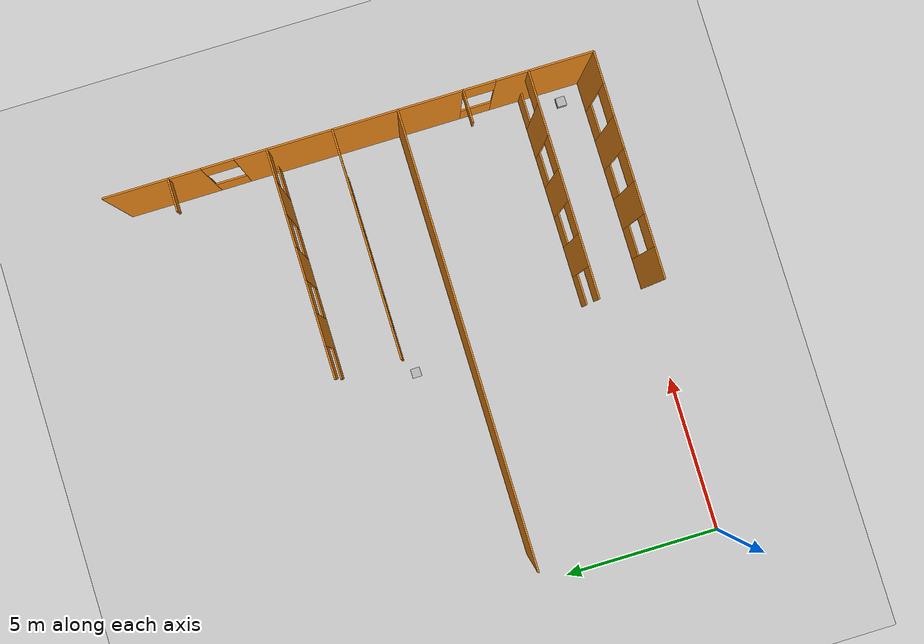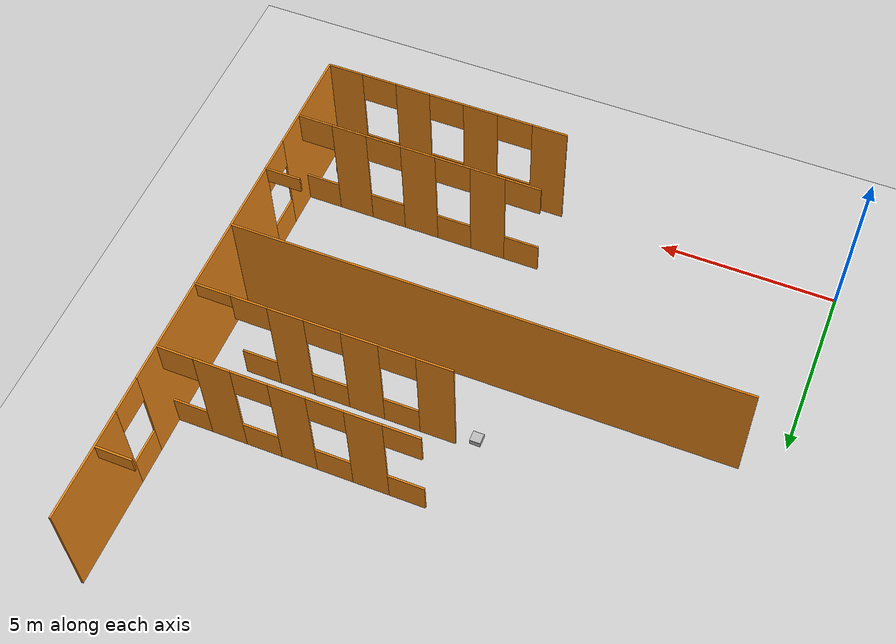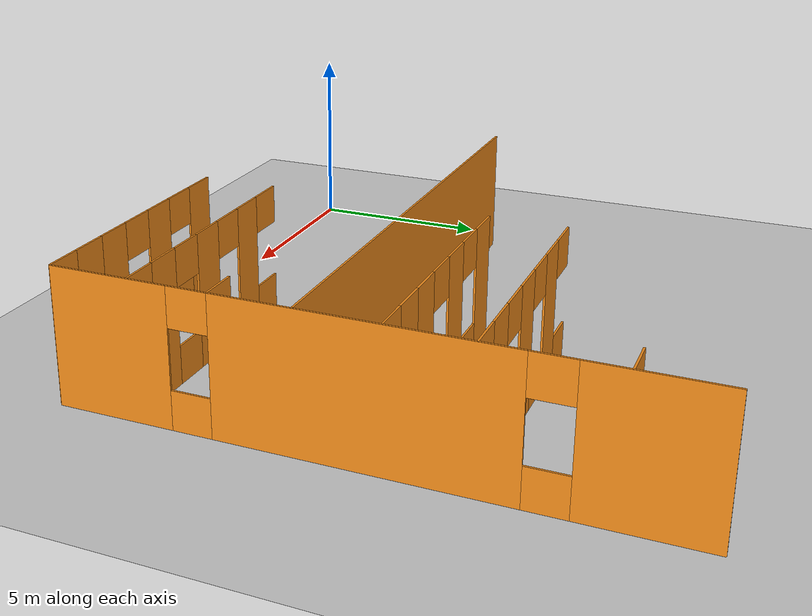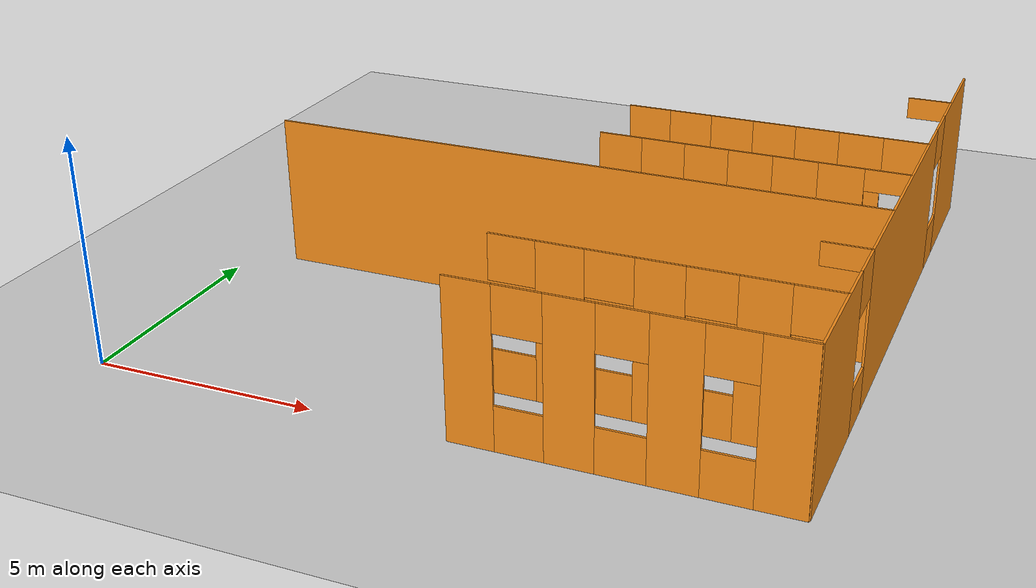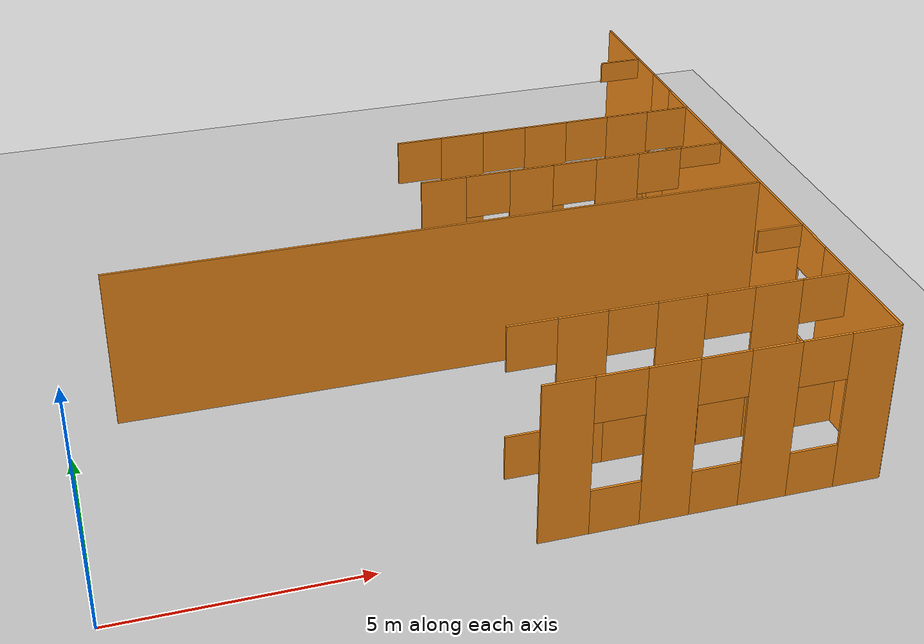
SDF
<sdf version="1.6">
 <world name="default">
  <include><uri>model://rirpc_box</uri><name>cube_2</name><pose>7.53125 7.71875 0 0 0 0</pose></include>
  <include><uri>model://rirpc_box</uri><name>cube_1</name><pose>14.53125 0.71875 0 0 0 0</pose></include>
  <model name="window_27">
   <pose>8.5 10.0 1.75 0 0 -0.0</pose>
   <link name="top">
    <pose>0 0 1.25 0 0 0</pose>
    <inertial>
     <mass>1</mass>
     <inertia><ixx>0</ixx><ixy>0</ixy><ixz>0</ixz><iyy>0</iyy><iyz>0</iyz><izz>0</izz></inertia>
    </inertial>
    <collision name="collision"><geometry><box><size>1.0 0.05 1.0</size></box></geometry></collision>
    <visual name="visual">
     <geometry><box><size>1.0 0.05 1.0</size></box></geometry>
     <material>
      <script><name>Gazebo/Orange</name><uri>file://media/materials/scripts/gazebo.material</uri></script>
     </material>
    </visual>
   </link>
   <link name="bot">
    <pose>0 0 -1.25 0 0 0</pose>
    <inertial>
     <mass>1</mass>
     <inertia><ixx>0</ixx><ixy>0</ixy><ixz>0</ixz><iyy>0</iyy><iyz>0</iyz><izz>0</izz></inertia>
    </inertial>
    <collision name="collision"><geometry><box><size>1.0 0.05 1.0</size></box></geometry></collision>
    <visual name="visual">
     <geometry><box><size>1.0 0.05 1.0</size></box></geometry>
     <material>
      <script><name>Gazebo/Orange</name><uri>file://media/materials/scripts/gazebo.material</uri></script>
     </material>
    </visual>
   </link>
   <static>1</static>
  </model>
  <model name="window_26">
   <pose>10.5 10.0 1.75 0 0 -0.0</pose>
   <link name="top">
    <pose>0 0 1.25 0 0 0</pose>
    <inertial>
     <mass>1</mass>
     <inertia><ixx>0</ixx><ixy>0</ixy><ixz>0</ixz><iyy>0</iyy><iyz>0</iyz><izz>0</izz></inertia>
    </inertial>
    <collision name="collision"><geometry><box><size>1.0 0.05 1.0</size></box></geometry></collision>
    <visual name="visual">
     <geometry><box><size>1.0 0.05 1.0</size></box></geometry>
     <material>
      <script><name>Gazebo/Orange</name><uri>file://media/materials/scripts/gazebo.material</uri></script>
     </material>
    </visual>
   </link>
   <link name="bot">
    <pose>0 0 -1.25 0 0 0</pose>
    <inertial>
     <mass>1</mass>
     <inertia><ixx>0</ixx><ixy>0</ixy><ixz>0</ixz><iyy>0</iyy><iyz>0</iyz><izz>0</izz></inertia>
    </inertial>
    <collision name="collision"><geometry><box><size>1.0 0.05 1.0</size></box></geometry></collision>
    <visual name="visual">
     <geometry><box><size>1.0 0.05 1.0</size></box></geometry>
     <material>
      <script><name>Gazebo/Orange</name><uri>file://media/materials/scripts/gazebo.material</uri></script>
     </material>
    </visual>
   </link>
   <static>1</static>
  </model>
  <model name="window_25">
   <pose>12.5 10.0 1.75 0 0 -0.0</pose>
   <link name="top">
    <pose>0 0 1.25 0 0 0</pose>
    <inertial>
     <mass>1</mass>
     <inertia><ixx>0</ixx><ixy>0</ixy><ixz>0</ixz><iyy>0</iyy><iyz>0</iyz><izz>0</izz></inertia>
    </inertial>
    <collision name="collision"><geometry><box><size>1.0 0.05 1.0</size></box></geometry></collision>
    <visual name="visual">
     <geometry><box><size>1.0 0.05 1.0</size></box></geometry>
     <material>
      <script><name>Gazebo/Orange</name><uri>file://media/materials/scripts/gazebo.material</uri></script>
     </material>
    </visual>
   </link>
   <link name="bot">
    <pose>0 0 -1.25 0 0 0</pose>
    <inertial>
     <mass>1</mass>
     <inertia><ixx>0</ixx><ixy>0</ixy><ixz>0</ixz><iyy>0</iyy><iyz>0</iyz><izz>0</izz></inertia>
    </inertial>
    <collision name="collision"><geometry><box><size>1.0 0.05 1.0</size></box></geometry></collision>
    <visual name="visual">
     <geometry><box><size>1.0 0.05 1.0</size></box></geometry>
     <material>
      <script><name>Gazebo/Orange</name><uri>file://media/materials/scripts/gazebo.material</uri></script>
     </material>
    </visual>
   </link>
   <static>1</static>
  </model>
  <model name="window_24">
   <pose>14.5 10.0 1.75 0 0 -0.0</pose>
   <link name="top">
    <pose>0 0 1.25 0 0 0</pose>
    <inertial>
     <mass>1</mass>
     <inertia><ixx>0</ixx><ixy>0</ixy><ixz>0</ixz><iyy>0</iyy><iyz>0</iyz><izz>0</izz></inertia>
    </inertial>
    <collision name="collision"><geometry><box><size>1.0 0.05 1.0</size></box></geometry></collision>
    <visual name="visual">
     <geometry><box><size>1.0 0.05 1.0</size></box></geometry>
     <material>
      <script><name>Gazebo/Orange</name><uri>file://media/materials/scripts/gazebo.material</uri></script>
     </material>
    </visual>
   </link>
   <link name="bot">
    <pose>0 0 -1.25 0 0 0</pose>
    <inertial>
     <mass>1</mass>
     <inertia><ixx>0</ixx><ixy>0</ixy><ixz>0</ixz><iyy>0</iyy><iyz>0</iyz><izz>0</izz></inertia>
    </inertial>
    <collision name="collision"><geometry><box><size>1.0 0.05 1.0</size></box></geometry></collision>
    <visual name="visual">
     <geometry><box><size>1.0 0.05 1.0</size></box></geometry>
     <material>
      <script><name>Gazebo/Orange</name><uri>file://media/materials/scripts/gazebo.material</uri></script>
     </material>
    </visual>
   </link>
   <static>1</static>
  </model>
  <model name="window_23">
   <pose>13.5 8.0 1.75 0 0 -3.141592653589793</pose>
   <link name="top">
    <pose>0 0 1.25 0 0 0</pose>
    <inertial>
     <mass>1</mass>
     <inertia><ixx>0</ixx><ixy>0</ixy><ixz>0</ixz><iyy>0</iyy><iyz>0</iyz><izz>0</izz></inertia>
    </inertial>
    <collision name="collision"><geometry><box><size>1.0 0.05 1.0</size></box></geometry></collision>
    <visual name="visual">
     <geometry><box><size>1.0 0.05 1.0</size></box></geometry>
     <material>
      <script><name>Gazebo/Orange</name><uri>file://media/materials/scripts/gazebo.material</uri></script>
     </material>
    </visual>
   </link>
   <link name="bot">
    <pose>0 0 -1.25 0 0 0</pose>
    <inertial>
     <mass>1</mass>
     <inertia><ixx>0</ixx><ixy>0</ixy><ixz>0</ixz><iyy>0</iyy><iyz>0</iyz><izz>0</izz></inertia>
    </inertial>
    <collision name="collision"><geometry><box><size>1.0 0.05 1.0</size></box></geometry></collision>
    <visual name="visual">
     <geometry><box><size>1.0 0.05 1.0</size></box></geometry>
     <material>
      <script><name>Gazebo/Orange</name><uri>file://media/materials/scripts/gazebo.material</uri></script>
     </material>
    </visual>
   </link>
   <static>1</static>
  </model>
  <model name="window_22">
   <pose>11.5 8.0 1.75 0 0 -3.141592653589793</pose>
   <link name="top">
    <pose>0 0 1.25 0 0 0</pose>
    <inertial>
     <mass>1</mass>
     <inertia><ixx>0</ixx><ixy>0</ixy><ixz>0</ixz><iyy>0</iyy><iyz>0</iyz><izz>0</izz></inertia>
    </inertial>
    <collision name="collision"><geometry><box><size>1.0 0.05 1.0</size></box></geometry></collision>
    <visual name="visual">
     <geometry><box><size>1.0 0.05 1.0</size></box></geometry>
     <material>
      <script><name>Gazebo/Orange</name><uri>file://media/materials/scripts/gazebo.material</uri></script>
     </material>
    </visual>
   </link>
   <link name="bot">
    <pose>0 0 -1.25 0 0 0</pose>
    <inertial>
     <mass>1</mass>
     <inertia><ixx>0</ixx><ixy>0</ixy><ixz>0</ixz><iyy>0</iyy><iyz>0</iyz><izz>0</izz></inertia>
    </inertial>
    <collision name="collision"><geometry><box><size>1.0 0.05 1.0</size></box></geometry></collision>
    <visual name="visual">
     <geometry><box><size>1.0 0.05 1.0</size></box></geometry>
     <material>
      <script><name>Gazebo/Orange</name><uri>file://media/materials/scripts/gazebo.material</uri></script>
     </material>
    </visual>
   </link>
   <static>1</static>
  </model>
  <model name="window_21">
   <pose>9.5 8.0 1.75 0 0 -3.141592653589793</pose>
   <link name="top">
    <pose>0 0 1.25 0 0 0</pose>
    <inertial>
     <mass>1</mass>
     <inertia><ixx>0</ixx><ixy>0</ixy><ixz>0</ixz><iyy>0</iyy><iyz>0</iyz><izz>0</izz></inertia>
    </inertial>
    <collision name="collision"><geometry><box><size>1.0 0.05 1.0</size></box></geometry></collision>
    <visual name="visual">
     <geometry><box><size>1.0 0.05 1.0</size></box></geometry>
     <material>
      <script><name>Gazebo/Orange</name><uri>file://media/materials/scripts/gazebo.material</uri></script>
     </material>
    </visual>
   </link>
   <link name="bot">
    <pose>0 0 -1.25 0 0 0</pose>
    <inertial>
     <mass>1</mass>
     <inertia><ixx>0</ixx><ixy>0</ixy><ixz>0</ixz><iyy>0</iyy><iyz>0</iyz><izz>0</izz></inertia>
    </inertial>
    <collision name="collision"><geometry><box><size>1.0 0.05 1.0</size></box></geometry></collision>
    <visual name="visual">
     <geometry><box><size>1.0 0.05 1.0</size></box></geometry>
     <material>
      <script><name>Gazebo/Orange</name><uri>file://media/materials/scripts/gazebo.material</uri></script>
     </material>
    </visual>
   </link>
   <static>1</static>
  </model>
  <model name="window_16">
   <pose>14.5 2.0 1.75 0 0 -3.141592653589793</pose>
   <link name="top">
    <pose>0 0 1.25 0 0 0</pose>
    <inertial>
     <mass>1</mass>
     <inertia><ixx>0</ixx><ixy>0</ixy><ixz>0</ixz><iyy>0</iyy><iyz>0</iyz><izz>0</izz></inertia>
    </inertial>
    <collision name="collision"><geometry><box><size>1.0 0.05 1.0</size></box></geometry></collision>
    <visual name="visual">
     <geometry><box><size>1.0 0.05 1.0</size></box></geometry>
     <material>
      <script><name>Gazebo/Orange</name><uri>file://media/materials/scripts/gazebo.material</uri></script>
     </material>
    </visual>
   </link>
   <link name="bot">
    <pose>0 0 -1.25 0 0 0</pose>
    <inertial>
     <mass>1</mass>
     <inertia><ixx>0</ixx><ixy>0</ixy><ixz>0</ixz><iyy>0</iyy><iyz>0</iyz><izz>0</izz></inertia>
    </inertial>
    <collision name="collision"><geometry><box><size>1.0 0.05 1.0</size></box></geometry></collision>
    <visual name="visual">
     <geometry><box><size>1.0 0.05 1.0</size></box></geometry>
     <material>
      <script><name>Gazebo/Orange</name><uri>file://media/materials/scripts/gazebo.material</uri></script>
     </material>
    </visual>
   </link>
   <static>1</static>
  </model>
  <model name="window_15">
   <pose>12.5 2.0 1.75 0 0 -3.141592653589793</pose>
   <link name="top">
    <pose>0 0 1.25 0 0 0</pose>
    <inertial>
     <mass>1</mass>
     <inertia><ixx>0</ixx><ixy>0</ixy><ixz>0</ixz><iyy>0</iyy><iyz>0</iyz><izz>0</izz></inertia>
    </inertial>
    <collision name="collision"><geometry><box><size>1.0 0.05 1.0</size></box></geometry></collision>
    <visual name="visual">
     <geometry><box><size>1.0 0.05 1.0</size></box></geometry>
     <material>
      <script><name>Gazebo/Orange</name><uri>file://media/materials/scripts/gazebo.material</uri></script>
     </material>
    </visual>
   </link>
   <link name="bot">
    <pose>0 0 -1.25 0 0 0</pose>
    <inertial>
     <mass>1</mass>
     <inertia><ixx>0</ixx><ixy>0</ixy><ixz>0</ixz><iyy>0</iyy><iyz>0</iyz><izz>0</izz></inertia>
    </inertial>
    <collision name="collision"><geometry><box><size>1.0 0.05 1.0</size></box></geometry></collision>
    <visual name="visual">
     <geometry><box><size>1.0 0.05 1.0</size></box></geometry>
     <material>
      <script><name>Gazebo/Orange</name><uri>file://media/materials/scripts/gazebo.material</uri></script>
     </material>
    </visual>
   </link>
   <static>1</static>
  </model>
  <model name="window_14">
   <pose>8.5 2.0 1.75 0 0 -3.141592653589793</pose>
   <link name="top">
    <pose>0 0 1.25 0 0 0</pose>
    <inertial>
     <mass>1</mass>
     <inertia><ixx>0</ixx><ixy>0</ixy><ixz>0</ixz><iyy>0</iyy><iyz>0</iyz><izz>0</izz></inertia>
    </inertial>
    <collision name="collision"><geometry><box><size>1.0 0.05 1.0</size></box></geometry></collision>
    <visual name="visual">
     <geometry><box><size>1.0 0.05 1.0</size></box></geometry>
     <material>
      <script><name>Gazebo/Orange</name><uri>file://media/materials/scripts/gazebo.material</uri></script>
     </material>
    </visual>
   </link>
   <link name="bot">
    <pose>0 0 -1.25 0 0 0</pose>
    <inertial>
     <mass>1</mass>
     <inertia><ixx>0</ixx><ixy>0</ixy><ixz>0</ixz><iyy>0</iyy><iyz>0</iyz><izz>0</izz></inertia>
    </inertial>
    <collision name="collision"><geometry><box><size>1.0 0.05 1.0</size></box></geometry></collision>
    <visual name="visual">
     <geometry><box><size>1.0 0.05 1.0</size></box></geometry>
     <material>
      <script><name>Gazebo/Orange</name><uri>file://media/materials/scripts/gazebo.material</uri></script>
     </material>
    </visual>
   </link>
   <static>1</static>
  </model>
  <model name="window_13">
   <pose>10.5 2.0 1.75 0 0 -3.141592653589793</pose>
   <link name="top">
    <pose>0 0 1.25 0 0 0</pose>
    <inertial>
     <mass>1</mass>
     <inertia><ixx>0</ixx><ixy>0</ixy><ixz>0</ixz><iyy>0</iyy><iyz>0</iyz><izz>0</izz></inertia>
    </inertial>
    <collision name="collision"><geometry><box><size>1.0 0.05 1.0</size></box></geometry></collision>
    <visual name="visual">
     <geometry><box><size>1.0 0.05 1.0</size></box></geometry>
     <material>
      <script><name>Gazebo/Orange</name><uri>file://media/materials/scripts/gazebo.material</uri></script>
     </material>
    </visual>
   </link>
   <link name="bot">
    <pose>0 0 -1.25 0 0 0</pose>
    <inertial>
     <mass>1</mass>
     <inertia><ixx>0</ixx><ixy>0</ixy><ixz>0</ixz><iyy>0</iyy><iyz>0</iyz><izz>0</izz></inertia>
    </inertial>
    <collision name="collision"><geometry><box><size>1.0 0.05 1.0</size></box></geometry></collision>
    <visual name="visual">
     <geometry><box><size>1.0 0.05 1.0</size></box></geometry>
     <material>
      <script><name>Gazebo/Orange</name><uri>file://media/materials/scripts/gazebo.material</uri></script>
     </material>
    </visual>
   </link>
   <static>1</static>
  </model>
  <model name="window_9">
   <pose>15.0 11.5 1.75 0 0 1.5707963267948966</pose>
   <link name="top">
    <pose>0 0 1.25 0 0 0</pose>
    <inertial>
     <mass>1</mass>
     <inertia><ixx>0</ixx><ixy>0</ixy><ixz>0</ixz><iyy>0</iyy><iyz>0</iyz><izz>0</izz></inertia>
    </inertial>
    <collision name="collision"><geometry><box><size>1.0 0.05 1.0</size></box></geometry></collision>
    <visual name="visual">
     <geometry><box><size>1.0 0.05 1.0</size></box></geometry>
     <material>
      <script><name>Gazebo/Orange</name><uri>file://media/materials/scripts/gazebo.material</uri></script>
     </material>
    </visual>
   </link>
   <link name="bot">
    <pose>0 0 -1.25 0 0 0</pose>
    <inertial>
     <mass>1</mass>
     <inertia><ixx>0</ixx><ixy>0</ixy><ixz>0</ixz><iyy>0</iyy><iyz>0</iyz><izz>0</izz></inertia>
    </inertial>
    <collision name="collision"><geometry><box><size>1.0 0.05 1.0</size></box></geometry></collision>
    <visual name="visual">
     <geometry><box><size>1.0 0.05 1.0</size></box></geometry>
     <material>
      <script><name>Gazebo/Orange</name><uri>file://media/materials/scripts/gazebo.material</uri></script>
     </material>
    </visual>
   </link>
   <static>1</static>
  </model>
  <model name="window_8">
   <pose>15.0 3.5 1.75 0 0 1.5707963267948966</pose>
   <link name="top">
    <pose>0 0 1.25 0 0 0</pose>
    <inertial>
     <mass>1</mass>
     <inertia><ixx>0</ixx><ixy>0</ixy><ixz>0</ixz><iyy>0</iyy><iyz>0</iyz><izz>0</izz></inertia>
    </inertial>
    <collision name="collision"><geometry><box><size>1.0 0.05 1.0</size></box></geometry></collision>
    <visual name="visual">
     <geometry><box><size>1.0 0.05 1.0</size></box></geometry>
     <material>
      <script><name>Gazebo/Orange</name><uri>file://media/materials/scripts/gazebo.material</uri></script>
     </material>
    </visual>
   </link>
   <link name="bot">
    <pose>0 0 -1.25 0 0 0</pose>
    <inertial>
     <mass>1</mass>
     <inertia><ixx>0</ixx><ixy>0</ixy><ixz>0</ixz><iyy>0</iyy><iyz>0</iyz><izz>0</izz></inertia>
    </inertial>
    <collision name="collision"><geometry><box><size>1.0 0.05 1.0</size></box></geometry></collision>
    <visual name="visual">
     <geometry><box><size>1.0 0.05 1.0</size></box></geometry>
     <material>
      <script><name>Gazebo/Orange</name><uri>file://media/materials/scripts/gazebo.material</uri></script>
     </material>
    </visual>
   </link>
   <static>1</static>
  </model>
  <model name="window_7">
   <pose>13.5 0.0 1.75 0 0 -3.141592653589793</pose>
   <link name="top">
    <pose>0 0 1.25 0 0 0</pose>
    <inertial>
     <mass>1</mass>
     <inertia><ixx>0</ixx><ixy>0</ixy><ixz>0</ixz><iyy>0</iyy><iyz>0</iyz><izz>0</izz></inertia>
    </inertial>
    <collision name="collision"><geometry><box><size>1.0 0.05 1.0</size></box></geometry></collision>
    <visual name="visual">
     <geometry><box><size>1.0 0.05 1.0</size></box></geometry>
     <material>
      <script><name>Gazebo/Orange</name><uri>file://media/materials/scripts/gazebo.material</uri></script>
     </material>
    </visual>
   </link>
   <link name="bot">
    <pose>0 0 -1.25 0 0 0</pose>
    <inertial>
     <mass>1</mass>
     <inertia><ixx>0</ixx><ixy>0</ixy><ixz>0</ixz><iyy>0</iyy><iyz>0</iyz><izz>0</izz></inertia>
    </inertial>
    <collision name="collision"><geometry><box><size>1.0 0.05 1.0</size></box></geometry></collision>
    <visual name="visual">
     <geometry><box><size>1.0 0.05 1.0</size></box></geometry>
     <material>
      <script><name>Gazebo/Orange</name><uri>file://media/materials/scripts/gazebo.material</uri></script>
     </material>
    </visual>
   </link>
   <static>1</static>
  </model>
  <model name="window_6">
   <pose>11.5 0.0 1.75 0 0 -3.141592653589793</pose>
   <link name="top">
    <pose>0 0 1.25 0 0 0</pose>
    <inertial>
     <mass>1</mass>
     <inertia><ixx>0</ixx><ixy>0</ixy><ixz>0</ixz><iyy>0</iyy><iyz>0</iyz><izz>0</izz></inertia>
    </inertial>
    <collision name="collision"><geometry><box><size>1.0 0.05 1.0</size></box></geometry></collision>
    <visual name="visual">
     <geometry><box><size>1.0 0.05 1.0</size></box></geometry>
     <material>
      <script><name>Gazebo/Orange</name><uri>file://media/materials/scripts/gazebo.material</uri></script>
     </material>
    </visual>
   </link>
   <link name="bot">
    <pose>0 0 -1.25 0 0 0</pose>
    <inertial>
     <mass>1</mass>
     <inertia><ixx>0</ixx><ixy>0</ixy><ixz>0</ixz><iyy>0</iyy><iyz>0</iyz><izz>0</izz></inertia>
    </inertial>
    <collision name="collision"><geometry><box><size>1.0 0.05 1.0</size></box></geometry></collision>
    <visual name="visual">
     <geometry><box><size>1.0 0.05 1.0</size></box></geometry>
     <material>
      <script><name>Gazebo/Orange</name><uri>file://media/materials/scripts/gazebo.material</uri></script>
     </material>
    </visual>
   </link>
   <static>1</static>
  </model>
  <model name="window_5">
   <pose>9.5 0.0 1.75 0 0 -3.141592653589793</pose>
   <link name="top">
    <pose>0 0 1.25 0 0 0</pose>
    <inertial>
     <mass>1</mass>
     <inertia><ixx>0</ixx><ixy>0</ixy><ixz>0</ixz><iyy>0</iyy><iyz>0</iyz><izz>0</izz></inertia>
    </inertial>
    <collision name="collision"><geometry><box><size>1.0 0.05 1.0</size></box></geometry></collision>
    <visual name="visual">
     <geometry><box><size>1.0 0.05 1.0</size></box></geometry>
     <material>
      <script><name>Gazebo/Orange</name><uri>file://media/materials/scripts/gazebo.material</uri></script>
     </material>
    </visual>
   </link>
   <link name="bot">
    <pose>0 0 -1.25 0 0 0</pose>
    <inertial>
     <mass>1</mass>
     <inertia><ixx>0</ixx><ixy>0</ixy><ixz>0</ixz><iyy>0</iyy><iyz>0</iyz><izz>0</izz></inertia>
    </inertial>
    <collision name="collision"><geometry><box><size>1.0 0.05 1.0</size></box></geometry></collision>
    <visual name="visual">
     <geometry><box><size>1.0 0.05 1.0</size></box></geometry>
     <material>
      <script><name>Gazebo/Orange</name><uri>file://media/materials/scripts/gazebo.material</uri></script>
     </material>
    </visual>
   </link>
   <static>1</static>
  </model>
  <model name="box_43">
   <pose>14.5 8.0 3.25 0 0 -3.141592653589793</pose>
   <link name="link">
    <inertial>
     <mass>1</mass>
     <inertia><ixx>0</ixx><ixy>0</ixy><ixz>0</ixz><iyy>0</iyy><iyz>0</iyz><izz>0</izz></inertia>
    </inertial>
    <collision name="collision"><geometry><box><size>1.0 0.05 0.5</size></box></geometry></collision>
    <visual name="visual">
     <geometry><box><size>1.0 0.05 0.5</size></box></geometry>
     <material>
      <script><name>Gazebo/Orange</name><uri>file://media/materials/scripts/gazebo.material</uri></script>
     </material>
    </visual>
   </link>
   <static>1</static>
  </model>
  <model name="box_42">
   <pose>14.5 4.0 3.25 0 0 -0.0</pose>
   <link name="link">
    <inertial>
     <mass>1</mass>
     <inertia><ixx>0</ixx><ixy>0</ixy><ixz>0</ixz><iyy>0</iyy><iyz>0</iyz><izz>0</izz></inertia>
    </inertial>
    <collision name="collision"><geometry><box><size>1.0 0.05 0.5</size></box></geometry></collision>
    <visual name="visual">
     <geometry><box><size>1.0 0.05 0.5</size></box></geometry>
     <material>
      <script><name>Gazebo/Orange</name><uri>file://media/materials/scripts/gazebo.material</uri></script>
     </material>
    </visual>
   </link>
   <static>1</static>
  </model>
  <model name="box_41">
   <pose>14.5 13.0 3.25 0 0 -3.141592653589793</pose>
   <link name="link">
    <inertial>
     <mass>1</mass>
     <inertia><ixx>0</ixx><ixy>0</ixy><ixz>0</ixz><iyy>0</iyy><iyz>0</iyz><izz>0</izz></inertia>
    </inertial>
    <collision name="collision"><geometry><box><size>1.0 0.05 0.5</size></box></geometry></collision>
    <visual name="visual">
     <geometry><box><size>1.0 0.05 0.5</size></box></geometry>
     <material>
      <script><name>Gazebo/Orange</name><uri>file://media/materials/scripts/gazebo.material</uri></script>
     </material>
    </visual>
   </link>
   <static>1</static>
  </model>
  <model name="box_34">
   <pose>9.5 10.0 1.75 0 0 -0.0</pose>
   <link name="link">
    <inertial>
     <mass>1</mass>
     <inertia><ixx>0</ixx><ixy>0</ixy><ixz>0</ixz><iyy>0</iyy><iyz>0</iyz><izz>0</izz></inertia>
    </inertial>
    <collision name="collision"><geometry><box><size>1.0 0.05 3.5</size></box></geometry></collision>
    <visual name="visual">
     <geometry><box><size>1.0 0.05 3.5</size></box></geometry>
     <material>
      <script><name>Gazebo/Orange</name><uri>file://media/materials/scripts/gazebo.material</uri></script>
     </material>
    </visual>
   </link>
   <static>1</static>
  </model>
  <model name="box_33">
   <pose>11.5 10.0 1.75 0 0 -0.0</pose>
   <link name="link">
    <inertial>
     <mass>1</mass>
     <inertia><ixx>0</ixx><ixy>0</ixy><ixz>0</ixz><iyy>0</iyy><iyz>0</iyz><izz>0</izz></inertia>
    </inertial>
    <collision name="collision"><geometry><box><size>1.0 0.05 3.5</size></box></geometry></collision>
    <visual name="visual">
     <geometry><box><size>1.0 0.05 3.5</size></box></geometry>
     <material>
      <script><name>Gazebo/Orange</name><uri>file://media/materials/scripts/gazebo.material</uri></script>
     </material>
    </visual>
   </link>
   <static>1</static>
  </model>
  <model name="box_32">
   <pose>13.5 10.0 1.75 0 0 -0.0</pose>
   <link name="link">
    <inertial>
     <mass>1</mass>
     <inertia><ixx>0</ixx><ixy>0</ixy><ixz>0</ixz><iyy>0</iyy><iyz>0</iyz><izz>0</izz></inertia>
    </inertial>
    <collision name="collision"><geometry><box><size>1.0 0.05 3.5</size></box></geometry></collision>
    <visual name="visual">
     <geometry><box><size>1.0 0.05 3.5</size></box></geometry>
     <material>
      <script><name>Gazebo/Orange</name><uri>file://media/materials/scripts/gazebo.material</uri></script>
     </material>
    </visual>
   </link>
   <static>1</static>
  </model>
  <model name="box_31">
   <pose>12.5 8.0 1.75 0 0 -3.141592653589793</pose>
   <link name="link">
    <inertial>
     <mass>1</mass>
     <inertia><ixx>0</ixx><ixy>0</ixy><ixz>0</ixz><iyy>0</iyy><iyz>0</iyz><izz>0</izz></inertia>
    </inertial>
    <collision name="collision"><geometry><box><size>1.0 0.05 3.5</size></box></geometry></collision>
    <visual name="visual">
     <geometry><box><size>1.0 0.05 3.5</size></box></geometry>
     <material>
      <script><name>Gazebo/Orange</name><uri>file://media/materials/scripts/gazebo.material</uri></script>
     </material>
    </visual>
   </link>
   <static>1</static>
  </model>
  <model name="box_30">
   <pose>10.5 8.0 1.75 0 0 -3.141592653589793</pose>
   <link name="link">
    <inertial>
     <mass>1</mass>
     <inertia><ixx>0</ixx><ixy>0</ixy><ixz>0</ixz><iyy>0</iyy><iyz>0</iyz><izz>0</izz></inertia>
    </inertial>
    <collision name="collision"><geometry><box><size>1.0 0.05 3.5</size></box></geometry></collision>
    <visual name="visual">
     <geometry><box><size>1.0 0.05 3.5</size></box></geometry>
     <material>
      <script><name>Gazebo/Orange</name><uri>file://media/materials/scripts/gazebo.material</uri></script>
     </material>
    </visual>
   </link>
   <static>1</static>
  </model>
  <model name="box_29">
   <pose>8.5 8.0 1.75 0 0 -3.141592653589793</pose>
   <link name="link">
    <inertial>
     <mass>1</mass>
     <inertia><ixx>0</ixx><ixy>0</ixy><ixz>0</ixz><iyy>0</iyy><iyz>0</iyz><izz>0</izz></inertia>
    </inertial>
    <collision name="collision"><geometry><box><size>1.0 0.05 3.5</size></box></geometry></collision>
    <visual name="visual">
     <geometry><box><size>1.0 0.05 3.5</size></box></geometry>
     <material>
      <script><name>Gazebo/Orange</name><uri>file://media/materials/scripts/gazebo.material</uri></script>
     </material>
    </visual>
   </link>
   <static>1</static>
  </model>
  <model name="box_24">
   <pose>8.0 6.0 1.75 0 0 -3.141592653589793</pose>
   <link name="link">
    <inertial>
     <mass>1</mass>
     <inertia><ixx>0</ixx><ixy>0</ixy><ixz>0</ixz><iyy>0</iyy><iyz>0</iyz><izz>0</izz></inertia>
    </inertial>
    <collision name="collision"><geometry><box><size>14.0 0.05 3.5</size></box></geometry></collision>
    <visual name="visual">
     <geometry><box><size>14.0 0.05 3.5</size></box></geometry>
     <material>
      <script><name>Gazebo/Orange</name><uri>file://media/materials/scripts/gazebo.material</uri></script>
     </material>
    </visual>
   </link>
   <static>1</static>
  </model>
  <model name="box_19">
   <pose>9.5 2.0 1.75 0 0 -0.0</pose>
   <link name="link">
    <inertial>
     <mass>1</mass>
     <inertia><ixx>0</ixx><ixy>0</ixy><ixz>0</ixz><iyy>0</iyy><iyz>0</iyz><izz>0</izz></inertia>
    </inertial>
    <collision name="collision"><geometry><box><size>1.0 0.05 3.5</size></box></geometry></collision>
    <visual name="visual">
     <geometry><box><size>1.0 0.05 3.5</size></box></geometry>
     <material>
      <script><name>Gazebo/Orange</name><uri>file://media/materials/scripts/gazebo.material</uri></script>
     </material>
    </visual>
   </link>
   <static>1</static>
  </model>
  <model name="box_18">
   <pose>11.5 2.0 1.75 0 0 -0.0</pose>
   <link name="link">
    <inertial>
     <mass>1</mass>
     <inertia><ixx>0</ixx><ixy>0</ixy><ixz>0</ixz><iyy>0</iyy><iyz>0</iyz><izz>0</izz></inertia>
    </inertial>
    <collision name="collision"><geometry><box><size>1.0 0.05 3.5</size></box></geometry></collision>
    <visual name="visual">
     <geometry><box><size>1.0 0.05 3.5</size></box></geometry>
     <material>
      <script><name>Gazebo/Orange</name><uri>file://media/materials/scripts/gazebo.material</uri></script>
     </material>
    </visual>
   </link>
   <static>1</static>
  </model>
  <model name="box_17">
   <pose>13.5 2.0 1.75 0 0 -0.0</pose>
   <link name="link">
    <inertial>
     <mass>1</mass>
     <inertia><ixx>0</ixx><ixy>0</ixy><ixz>0</ixz><iyy>0</iyy><iyz>0</iyz><izz>0</izz></inertia>
    </inertial>
    <collision name="collision"><geometry><box><size>1.0 0.05 3.5</size></box></geometry></collision>
    <visual name="visual">
     <geometry><box><size>1.0 0.05 3.5</size></box></geometry>
     <material>
      <script><name>Gazebo/Orange</name><uri>file://media/materials/scripts/gazebo.material</uri></script>
     </material>
    </visual>
   </link>
   <static>1</static>
  </model>
  <model name="box_11">
   <pose>15.0 13.5 1.75 0 0 -1.5707963267948966</pose>
   <link name="link">
    <inertial>
     <mass>1</mass>
     <inertia><ixx>0</ixx><ixy>0</ixy><ixz>0</ixz><iyy>0</iyy><iyz>0</iyz><izz>0</izz></inertia>
    </inertial>
    <collision name="collision"><geometry><box><size>3.0 0.05 3.5</size></box></geometry></collision>
    <visual name="visual">
     <geometry><box><size>3.0 0.05 3.5</size></box></geometry>
     <material>
      <script><name>Gazebo/Orange</name><uri>file://media/materials/scripts/gazebo.material</uri></script>
     </material>
    </visual>
   </link>
   <static>1</static>
  </model>
  <model name="box_10">
   <pose>15.0 7.5 1.75 0 0 1.5707963267948966</pose>
   <link name="link">
    <inertial>
     <mass>1</mass>
     <inertia><ixx>0</ixx><ixy>0</ixy><ixz>0</ixz><iyy>0</iyy><iyz>0</iyz><izz>0</izz></inertia>
    </inertial>
    <collision name="collision"><geometry><box><size>7.0 0.05 3.5</size></box></geometry></collision>
    <visual name="visual">
     <geometry><box><size>7.0 0.05 3.5</size></box></geometry>
     <material>
      <script><name>Gazebo/Orange</name><uri>file://media/materials/scripts/gazebo.material</uri></script>
     </material>
    </visual>
   </link>
   <static>1</static>
  </model>
  <model name="box_9">
   <pose>15.0 1.5 1.75 0 0 -1.5707963267948966</pose>
   <link name="link">
    <inertial>
     <mass>1</mass>
     <inertia><ixx>0</ixx><ixy>0</ixy><ixz>0</ixz><iyy>0</iyy><iyz>0</iyz><izz>0</izz></inertia>
    </inertial>
    <collision name="collision"><geometry><box><size>3.0 0.05 3.5</size></box></geometry></collision>
    <visual name="visual">
     <geometry><box><size>3.0 0.05 3.5</size></box></geometry>
     <material>
      <script><name>Gazebo/Orange</name><uri>file://media/materials/scripts/gazebo.material</uri></script>
     </material>
    </visual>
   </link>
   <static>1</static>
  </model>
  <model name="box_8">
   <pose>14.5 0.0 1.75 0 0 -3.141592653589793</pose>
   <link name="link">
    <inertial>
     <mass>1</mass>
     <inertia><ixx>0</ixx><ixy>0</ixy><ixz>0</ixz><iyy>0</iyy><iyz>0</iyz><izz>0</izz></inertia>
    </inertial>
    <collision name="collision"><geometry><box><size>1.0 0.05 3.5</size></box></geometry></collision>
    <visual name="visual">
     <geometry><box><size>1.0 0.05 3.5</size></box></geometry>
     <material>
      <script><name>Gazebo/Orange</name><uri>file://media/materials/scripts/gazebo.material</uri></script>
     </material>
    </visual>
   </link>
   <static>1</static>
  </model>
  <model name="box_7">
   <pose>12.5 0.0 1.75 0 0 -3.141592653589793</pose>
   <link name="link">
    <inertial>
     <mass>1</mass>
     <inertia><ixx>0</ixx><ixy>0</ixy><ixz>0</ixz><iyy>0</iyy><iyz>0</iyz><izz>0</izz></inertia>
    </inertial>
    <collision name="collision"><geometry><box><size>1.0 0.05 3.5</size></box></geometry></collision>
    <visual name="visual">
     <geometry><box><size>1.0 0.05 3.5</size></box></geometry>
     <material>
      <script><name>Gazebo/Orange</name><uri>file://media/materials/scripts/gazebo.material</uri></script>
     </material>
    </visual>
   </link>
   <static>1</static>
  </model>
  <model name="box_6">
   <pose>10.5 0.0 1.75 0 0 -3.141592653589793</pose>
   <link name="link">
    <inertial>
     <mass>1</mass>
     <inertia><ixx>0</ixx><ixy>0</ixy><ixz>0</ixz><iyy>0</iyy><iyz>0</iyz><izz>0</izz></inertia>
    </inertial>
    <collision name="collision"><geometry><box><size>1.0 0.05 3.5</size></box></geometry></collision>
    <visual name="visual">
     <geometry><box><size>1.0 0.05 3.5</size></box></geometry>
     <material>
      <script><name>Gazebo/Orange</name><uri>file://media/materials/scripts/gazebo.material</uri></script>
     </material>
    </visual>
   </link>
   <static>1</static>
  </model>
  <model name="box_5">
   <pose>8.5 0.0 1.75 0 0 -3.141592653589793</pose>
   <link name="link">
    <inertial>
     <mass>1</mass>
     <inertia><ixx>0</ixx><ixy>0</ixy><ixz>0</ixz><iyy>0</iyy><iyz>0</iyz><izz>0</izz></inertia>
    </inertial>
    <collision name="collision"><geometry><box><size>1.0 0.05 3.5</size></box></geometry></collision>
    <visual name="visual">
     <geometry><box><size>1.0 0.05 3.5</size></box></geometry>
     <material>
      <script><name>Gazebo/Orange</name><uri>file://media/materials/scripts/gazebo.material</uri></script>
     </material>
    </visual>
   </link>
   <static>1</static>
  </model>
  <model name="ground_plane">
   <static>1</static>
   <link name="link">
    <collision name="collision">
     <geometry><plane><normal>0 0 1</normal><size>100 100</size></plane></geometry>
     <surface>
      <contact><collide_bitmask>65535</collide_bitmask></contact>
      <friction><ode><mu>100</mu><mu2>50</mu2></ode></friction>
     </surface>
    </collision>
    <visual name="visual">
     <cast_shadows>0</cast_shadows>
     <geometry><plane><normal>0 0 1</normal><size>100 100</size></plane></geometry>
     <material>
      <script><uri>file://media/materials/scripts/gazebo.material</uri><name>Gazebo/Grey</name></script>
     </material>
    </visual>
   </link>
  </model>
 </world>
</sdf>
